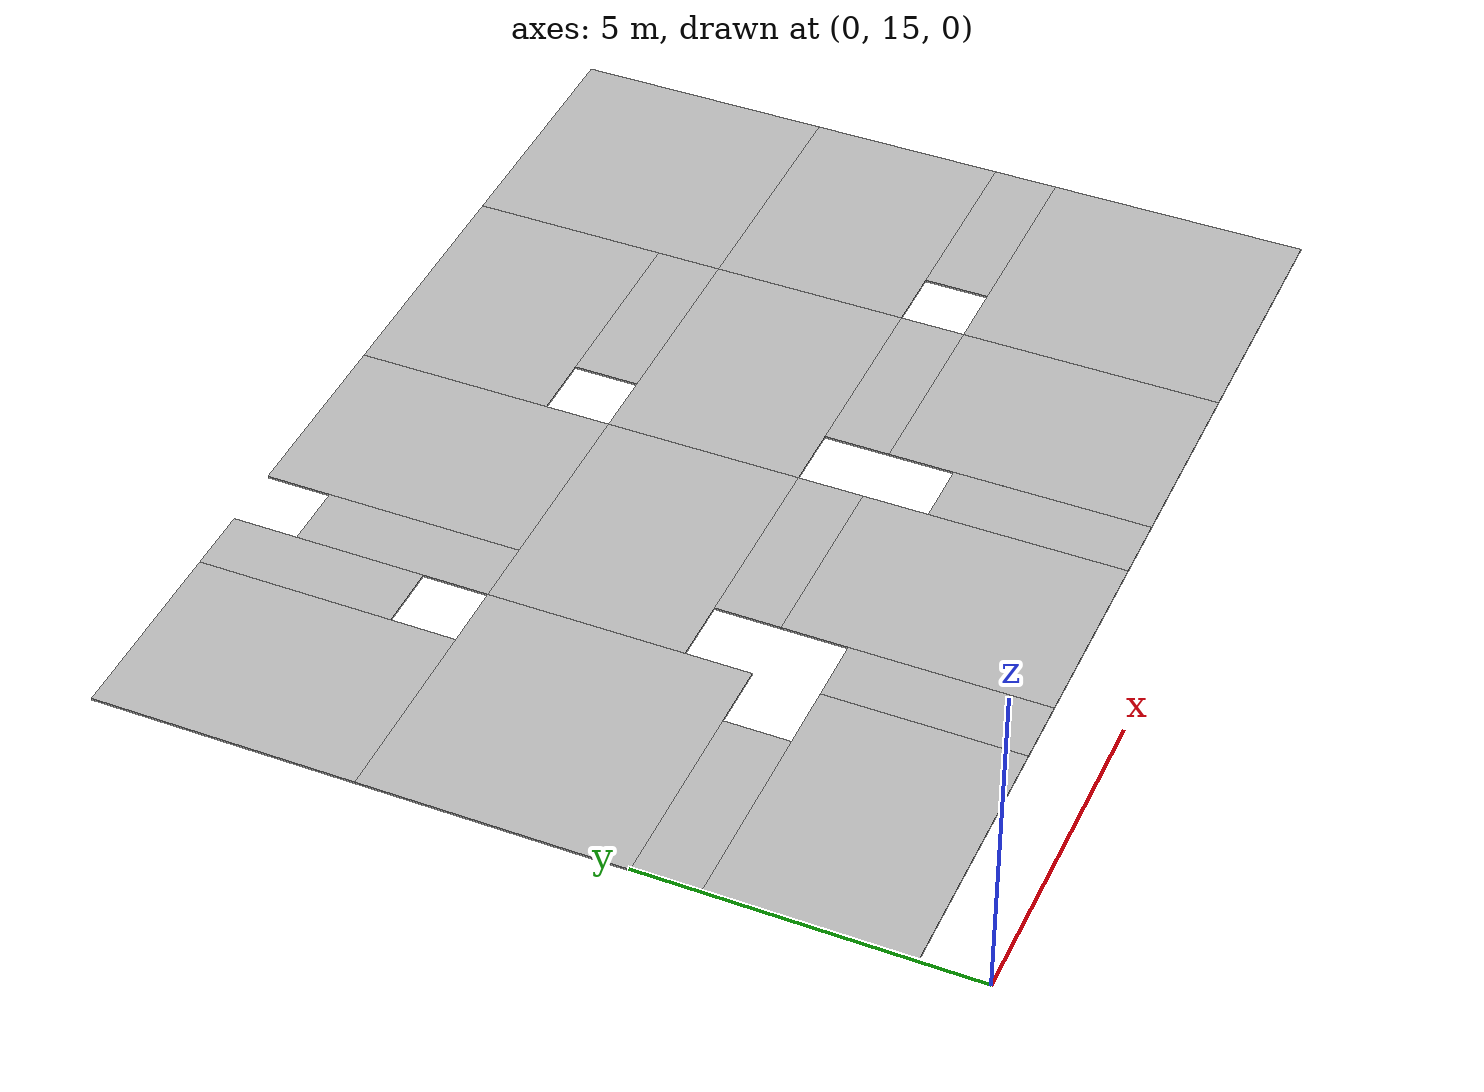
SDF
<?xml version="1.0" ?>
<sdf version="1.6">
  <model name="quad_hole_ground_mini">

    <include>
      <name>c1</name>
      <pose>10 18 0 0 0 -1.5708</pose>
      <uri>model://quad_hole_ground_corner</uri>
    </include>

    <include>
      <name>r1</name>
      <pose>10 22 0 0 0 0</pose>
      <uri>model://quad_hole_ground_corner</uri>
    </include>
    <include>
      <name>r2</name>
      <pose>10 26 0 0 0 0</pose>
      <uri>model://quad_hole_ground_corner</uri>
    </include>
    <include>
      <name>r3</name>
      <pose>6 26 0 0 0 -1.5708</pose>
      <uri>model://quad_hole_ground_corner</uri>
    </include>
    <include>
      <name>r4</name>
      <pose>2 26 0 0 0 1.5708</pose>
      <uri>model://quad_hole_ground_corner</uri>
    </include>
    <include>
      <name>r5</name>
      <pose>6 22 0 0 0 0</pose>
      <uri>model://quad_hole_ground_corner</uri>
    </include>
    <include>
      <name>r6</name>
      <pose>6 18 0 0 0 -1.5708</pose>
      <uri>model://quad_hole_ground_corner</uri>
    </include>
   <include>
      <name>r7</name>
      <pose>2 18 0 0 0 3.1415</pose>
      <uri>model://quad_hole_ground_corner</uri>
    </include>
    <include>
      <name>r8</name>
      <pose>14 22 0 0 0 0</pose>
      <uri>model://quad_hole_ground_corner</uri>
    </include>

    <include>
      <name>u1</name>
      <pose>14 26 0 0 0 0</pose>
      <uri>model://quad_hole_ground_unit</uri>
    </include>
    <include>
      <name>u3</name>
      <pose>14 18 0 0 0 0</pose>
      <uri>model://quad_hole_ground_unit</uri>
    </include>
    <include>
      <name>u4</name>
      <pose>2 22 0 0 0 0</pose>
      <uri>model://quad_hole_ground_unit</uri>
    </include>

  </model>
</sdf>

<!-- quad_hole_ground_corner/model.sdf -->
<sdf version="1.5">
  <model name="quad_hole_ground_corner">
    <static>true</static>
    <link name="ground">
      <pose>0 0.5 0 0 0 0</pose>
      <collision name="groundc">
        <geometry>
          <box>
            <size>4 3 0.03</size>
          </box>
        </geometry>
      </collision>
      <visual name="groundv">
        <geometry>
          <box>
            <size>4 3 0.03</size>
          </box>
        </geometry>
        <material>
          <script>
            <uri>model://quad_hole_ground_corner/materials/scripts</uri>
            <uri>model://quad_hole_ground_corner/materials/textures</uri>
            <name>vrc/quad_hole_ground_corner</name>
          </script>
        </material>
      </visual>
    </link>
    <link name="ground2">
      <pose>0.5 -1.5 0 0 0 0</pose>
      <collision name="groundc2">
        <geometry>
          <box>
            <size>3 1 0.03</size>
          </box>
        </geometry>
      </collision>
      <visual name="groundv2">
        <geometry>
          <box>
            <size>3 1 0.03</size>
          </box>
        </geometry>
        <material>
          <script>
            <uri>model://quad_hole_ground_corner/materials/scripts</uri>
            <uri>model://quad_hole_ground_corner/materials/textures</uri>
            <name>vrc/quad_hole_ground_corner</name>
          </script>
        </material>
      </visual>
    </link>

  </model>
</sdf>

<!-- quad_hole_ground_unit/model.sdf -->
<sdf version="1.5">
  <model name="quad_hole_ground_unit">
    <static>true</static>
    <link name="ground">
      <pose>0 0 0 0 0 0</pose>
      <collision name="groundc">
        <geometry>
          <box>
            <size>4 4 0.03</size>
          </box>
        </geometry>
      </collision>
      <visual name="groundv">
        <geometry>
          <box>
            <size>4 4 0.03</size>
          </box>
        </geometry>
        <material>
          <script>
            <uri>model://quad_hole_ground_unit/materials/scripts</uri>
            <uri>model://quad_hole_ground_unit/materials/textures</uri>
            <name>vrc/quad_hole_ground_unit</name>
          </script>
        </material>
      </visual>
    </link>
  </model>
</sdf>
